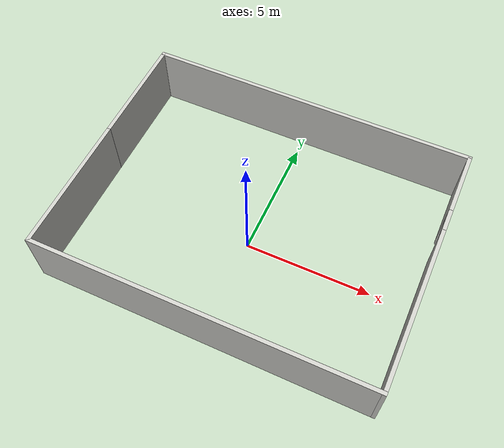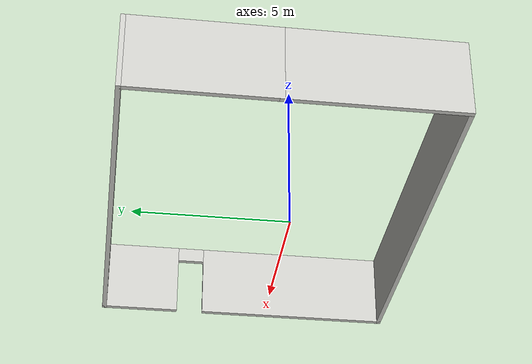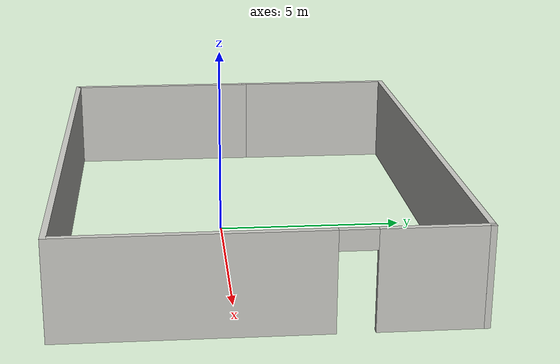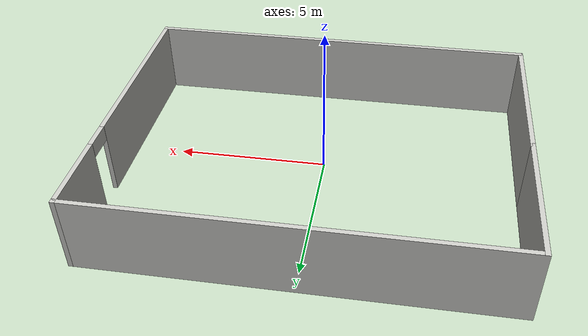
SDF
<?xml version='1.0'?>
<sdf version='1.6'>
  <model name='workplace'>
    <pose frame=''>0.081028 0.732649 0 0 -0 0</pose>
    <link name='Wall_0'>
      <collision name='Wall_0_Collision'>
        <geometry>
          <box>
            <size>5.5 0.15 2.5</size>
          </box>
        </geometry>
        <pose frame=''>0 0 1.25 0 -0 0</pose>
      </collision>
      <visual name='Wall_0_Visual'>
        <pose frame=''>0 0 1.25 0 -0 0</pose>
        <geometry>
          <box>
            <size>5.5 0.15 2.5</size>
          </box>
        </geometry>
        <material>
          <script>
            <uri>file://media/materials/scripts/gazebo.material</uri>
            <name>Gazebo/CeilingTiled</name>
          </script>
          <ambient>1 1 1 1</ambient>
        </material>
        <meta>
          <layer>0</layer>
        </meta>
      </visual>
      <pose frame=''>-6.55 -2.25 0 0 -0 -1.5708</pose>
    </link>
    <link name='Wall_1'>
      <collision name='Wall_1_Collision'>
        <geometry>
          <box>
            <size>13.25 0.15 2.5</size>
          </box>
        </geometry>
        <pose frame=''>0 0 1.25 0 -0 0</pose>
      </collision>
      <visual name='Wall_1_Visual'>
        <pose frame=''>0 0 1.25 0 -0 0</pose>
        <geometry>
          <box>
            <size>13.25 0.15 2.5</size>
          </box>
        </geometry>
        <material>
          <script>
            <uri>file://media/materials/scripts/gazebo.material</uri>
            <name>Gazebo/CeilingTiled</name>
          </script>
          <ambient>1 1 1 1</ambient>
        </material>
        <meta>
          <layer>0</layer>
        </meta>
      </visual>
      <pose frame=''>-0 -4.925 0 0 -0 0</pose>
    </link>
    <link name='Wall_3'>
      <pose frame=''>6.55 -0 0 0 -0 1.5708</pose>
      <visual name='Wall_3_Visual_0'>
        <pose frame=''>-1.76236 0 1.25 0 -0 0</pose>
        <geometry>
          <box>
            <size>6.47529 0.15 2.5</size>
          </box>
        </geometry>
        <material>
          <script>
            <uri>file://media/materials/scripts/gazebo.material</uri>
            <name>Gazebo/CeilingTiled</name>
          </script>
          <ambient>1 1 1 1</ambient>
        </material>
        <meta>
          <layer>0</layer>
        </meta>
      </visual>
      <collision name='Wall_3_Collision_0'>
        <geometry>
          <box>
            <size>6.47529 0.15 2.5</size>
          </box>
        </geometry>
        <pose frame=''>-1.76236 0 1.25 0 -0 0</pose>
      </collision>
      <visual name='Wall_3_Visual_1'>
        <pose frame=''>3.68764 0 1.25 0 -0 0</pose>
        <geometry>
          <box>
            <size>2.62471 0.15 2.5</size>
          </box>
        </geometry>
        <material>
          <script>
            <uri>file://media/materials/scripts/gazebo.material</uri>
            <name>Gazebo/CeilingTiled</name>
          </script>
          <ambient>1 1 1 1</ambient>
        </material>
        <meta>
          <layer>0</layer>
        </meta>
      </visual>
      <collision name='Wall_3_Collision_1'>
        <geometry>
          <box>
            <size>2.62471 0.15 2.5</size>
          </box>
        </geometry>
        <pose frame=''>3.68764 0 1.25 0 -0 0</pose>
      </collision>
      <visual name='Wall_3_Visual_2'>
        <pose frame=''>1.92529 0 2.25 0 -0 0</pose>
        <geometry>
          <box>
            <size>0.9 0.15 0.5</size>
          </box>
        </geometry>
        <material>
          <script>
            <uri>file://media/materials/scripts/gazebo.material</uri>
            <name>Gazebo/CeilingTiled</name>
          </script>
          <ambient>1 1 1 1</ambient>
        </material>
        <meta>
          <layer>0</layer>
        </meta>
      </visual>
      <collision name='Wall_3_Collision_2'>
        <geometry>
          <box>
            <size>0.9 0.15 0.5</size>
          </box>
        </geometry>
        <pose frame=''>1.92529 0 2.25 0 -0 0</pose>
      </collision>
    </link>
    <link name='Wall_4'>
      <collision name='Wall_4_Collision'>
        <geometry>
          <box>
            <size>13.25 0.15 2.5</size>
          </box>
        </geometry>
        <pose frame=''>0 0 1.25 0 -0 0</pose>
      </collision>
      <visual name='Wall_4_Visual'>
        <pose frame=''>0 0 1.25 0 -0 0</pose>
        <geometry>
          <box>
            <size>13.25 0.15 2.5</size>
          </box>
        </geometry>
        <material>
          <script>
            <uri>file://media/materials/scripts/gazebo.material</uri>
            <name>Gazebo/CeilingTiled</name>
          </script>
          <ambient>1 1 1 1</ambient>
        </material>
        <meta>
          <layer>0</layer>
        </meta>
      </visual>
      <pose frame=''>-0 4.925 0 0 -0 3.14159</pose>
    </link>
    <link name='Wall_5'>
      <collision name='Wall_5_Collision'>
        <geometry>
          <box>
            <size>4.65 0.15 2.5</size>
          </box>
        </geometry>
        <pose frame=''>0 0 1.25 0 -0 0</pose>
      </collision>
      <visual name='Wall_5_Visual'>
        <pose frame=''>0 0 1.25 0 -0 0</pose>
        <geometry>
          <box>
            <size>4.65 0.15 2.5</size>
          </box>
        </geometry>
        <material>
          <script>
            <uri>file://media/materials/scripts/gazebo.material</uri>
            <name>Gazebo/CeilingTiled</name>
          </script>
          <ambient>1 1 1 1</ambient>
        </material>
        <meta>
          <layer>0</layer>
        </meta>
      </visual>
      <pose frame=''>-6.55 2.675 0 0 -0 -1.5708</pose>
    </link>
    <static>1</static>
  </model>
</sdf>
